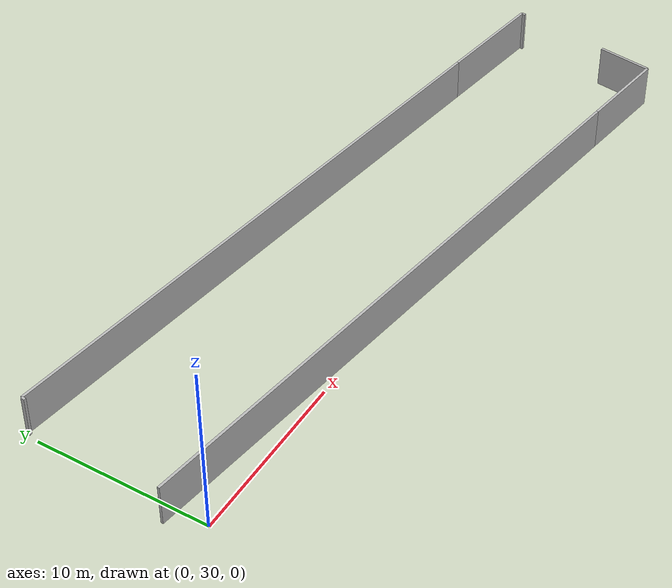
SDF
<?xml version="1.0" ?>
<sdf version="1.6">
  <model name="sps_3302">
    <pose frame="">0 0 0 0 -0 0</pose>
    <static>1</static>
    <self_collide>0</self_collide>
    <allow_auto_disable>0</allow_auto_disable>
    <link name="Wall55">
      <kinematic>0</kinematic>
      <gravity>1</gravity>
      <self_collide>0</self_collide>
      <collision name="collision">
        <geometry>
          <box>
            <size>0.223842 0.15 2.5</size>
          </box>
        </geometry>
        <pose frame="">0 0 0 0 -0 0</pose>
      </collision>
      <visual name="visual">
        <geometry>
          <box>
            <size>0.223842 0.15 2.5</size>
          </box>
        </geometry>
        <pose frame="">0 0 0 0 -0 0</pose>
        <cast_shadows>1</cast_shadows>
        <transparency>0.0</transparency>
      </visual>
      <pose frame="">0.226157 40.7122 1.25 0 -0 1.43569</pose>
    </link>
    <link name="Wall56">
      <kinematic>0</kinematic>
      <gravity>1</gravity>
      <self_collide>0</self_collide>
      <collision name="collision">
        <geometry>
          <box>
            <size>5.23191 0.15 2.5</size>
          </box>
        </geometry>
        <pose frame="">0 0 0 0 -0 0</pose>
      </collision>
      <visual name="visual">
        <geometry>
          <box>
            <size>5.23191 0.15 2.5</size>
          </box>
        </geometry>
        <pose frame="">0 0 0 0 -0 0</pose>
        <cast_shadows>1</cast_shadows>
        <transparency>0.0</transparency>
      </visual>
      <pose frame="">37.0614 26.7793 1.25 0 -0 3.00593</pose>
    </link>
    <link name="Wall57">
      <kinematic>0</kinematic>
      <gravity>1</gravity>
      <self_collide>0</self_collide>
      <collision name="collision">
        <geometry>
          <box>
            <size>35.7652 0.15 2.5</size>
          </box>
        </geometry>
        <pose frame="">0 0 0 0 -0 0</pose>
      </collision>
      <visual name="visual">
        <geometry>
          <box>
            <size>35.7652 0.15 2.5</size>
          </box>
        </geometry>
        <pose frame="">0 0 0 0 -0 0</pose>
        <cast_shadows>1</cast_shadows>
        <transparency>0.0</transparency>
      </visual>
      <pose frame="">16.7512 29.5517 1.25 0 -0 3.00593</pose>
    </link>
    <link name="Wall242">
      <kinematic>0</kinematic>
      <gravity>1</gravity>
      <self_collide>0</self_collide>
      <collision name="collision">
        <geometry>
          <box>
            <size>3.15054 0.15 2.5</size>
          </box>
        </geometry>
        <pose frame="">0 0 0 0 -0 0</pose>
      </collision>
      <visual name="visual">
        <geometry>
          <box>
            <size>3.15054 0.15 2.5</size>
          </box>
        </geometry>
        <pose frame="">0 0 0 0 -0 0</pose>
        <cast_shadows>1</cast_shadows>
        <transparency>0.0</transparency>
      </visual>
      <pose frame="">39.8664 27.9863 1.25 0 -0 1.43512</pose>
    </link>
    <link name="Wall375">
      <kinematic>0</kinematic>
      <gravity>1</gravity>
      <self_collide>0</self_collide>
      <collision name="collision">
        <geometry>
          <box>
            <size>34.5497 0.15 2.5</size>
          </box>
        </geometry>
        <pose frame="">0 0 0 0 -0 0</pose>
      </collision>
      <visual name="visual">
        <geometry>
          <box>
            <size>34.5497 0.15 2.5</size>
          </box>
        </geometry>
        <pose frame="">0 0 0 0 -0 0</pose>
        <cast_shadows>1</cast_shadows>
        <transparency>0.0</transparency>
      </visual>
      <pose frame="">17.3553 38.4719 1.25 0 0 -0.13653</pose>
    </link>
    <link name="Wall376">
      <kinematic>0</kinematic>
      <gravity>1</gravity>
      <self_collide>0</self_collide>
      <collision name="collision">
        <geometry>
          <box>
            <size>6.44739 0.15 2.5</size>
          </box>
        </geometry>
        <pose frame="">0 0 0 0 -0 0</pose>
      </collision>
      <visual name="visual">
        <geometry>
          <box>
            <size>6.44739 0.15 2.5</size>
          </box>
        </geometry>
        <pose frame="">0 0 0 0 -0 0</pose>
        <cast_shadows>1</cast_shadows>
        <transparency>0.0</transparency>
      </visual>
      <pose frame="">37.6631 35.6819 1.25 0 0 -0.13653</pose>
    </link>
    <link name="Wall639">
      <kinematic>0</kinematic>
      <gravity>1</gravity>
      <self_collide>0</self_collide>
      <collision name="collision">
        <geometry>
          <box>
            <size>0.248917 0.15 2.5</size>
          </box>
        </geometry>
        <pose frame="">0 0 0 0 -0 0</pose>
      </collision>
      <visual name="visual">
        <geometry>
          <box>
            <size>0.248917 0.15 2.5</size>
          </box>
        </geometry>
        <pose frame="">0 0 0 0 -0 0</pose>
        <cast_shadows>1</cast_shadows>
        <transparency>0.0</transparency>
      </visual>
      <pose frame="">40.84 35.1198 1.25 0 -0 1.43552</pose>
    </link>
  </model>
</sdf>
